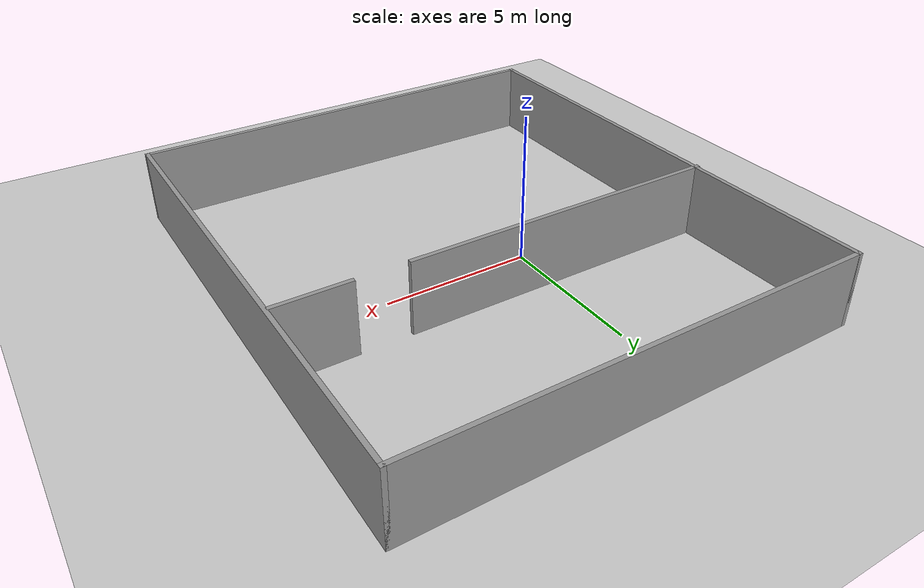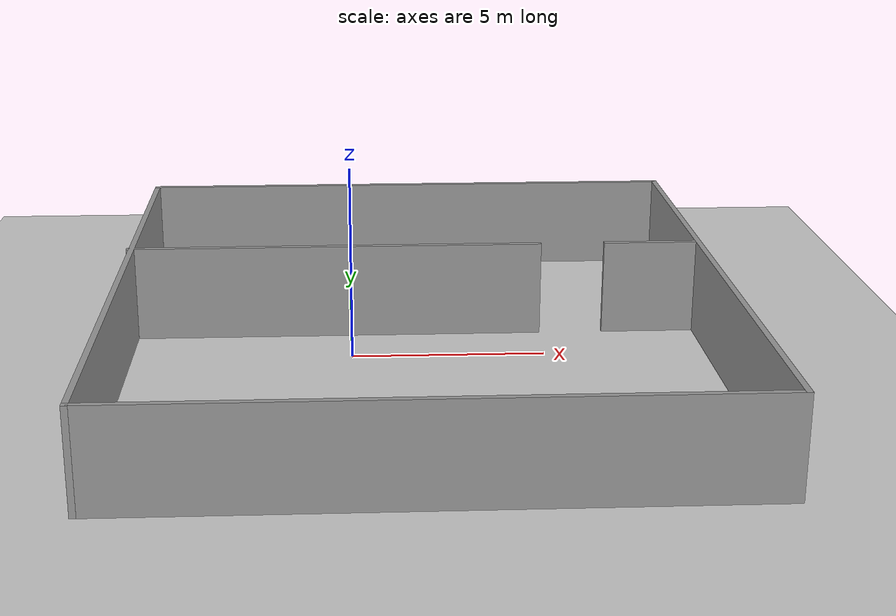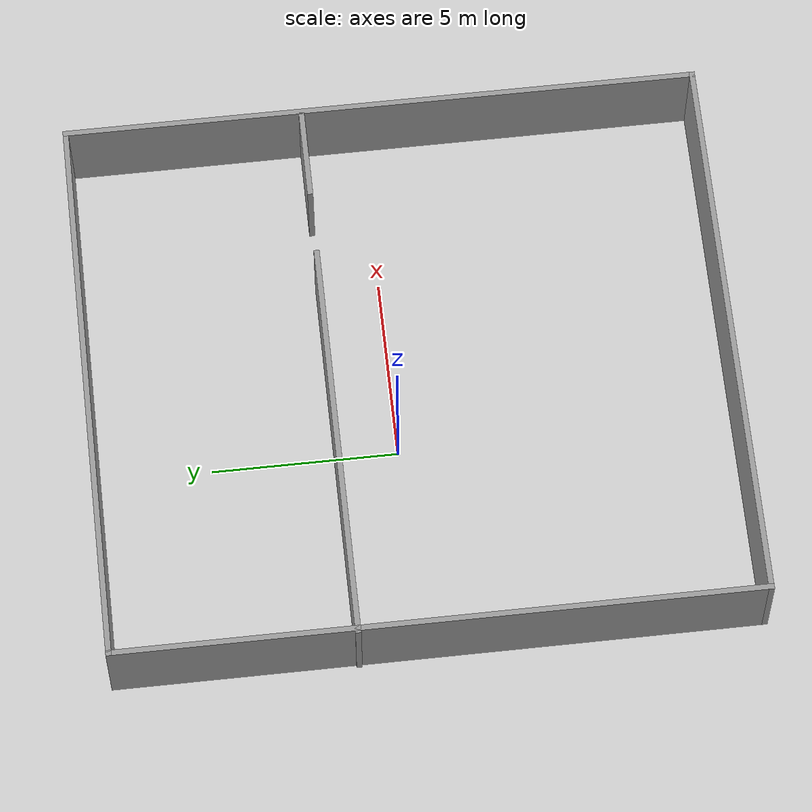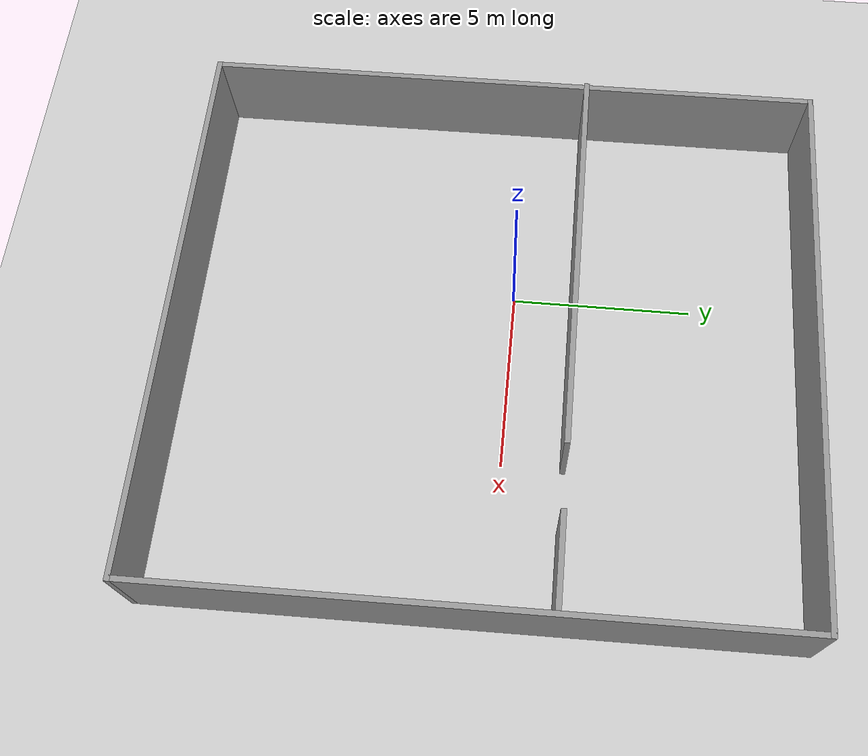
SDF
<?xml version="1.0" ?>
<sdf version="1.4">
  <world name="default">
    <!-- A global light source -->
    <include>
      <uri>model://sun</uri>
    </include>

    <!-- A ground plane -->
    <include>
      <uri>model://ground_plane</uri>
    </include>

    <!-- room map -->
    <include>
        <uri>model://map_2rooms </uri>
    </include>

  </world>
</sdf>

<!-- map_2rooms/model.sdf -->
<sdf version='1.6'>
  <model name='map_2rooms'>
    <pose frame=''>1.72541 -0.485273 0 0 -0 0</pose>
    <link name='Wall_0'>
      <collision name='Wall_0_Collision'>
        <geometry>
          <box>
            <size>15.25 0.15 2.5</size>
          </box>
        </geometry>
        <pose frame=''>0 0 1.25 0 -0 0</pose>
      </collision>
      <visual name='Wall_0_Visual'>
        <pose frame=''>0 0 1.25 0 -0 0</pose>
        <geometry>
          <box>
            <size>15.25 0.15 2.5</size>
          </box>
        </geometry>
        <material>
          <script>
            <uri>file://media/materials/scripts/gazebo.material</uri>
            <name>Gazebo/Grey</name>
          </script>
          <ambient>1 1 1 1</ambient>
        </material>
        <meta>
          <layer>0</layer>
        </meta>
      </visual>
      <pose frame=''>0.030074 8.55 0 0 -0 0</pose>
    </link>
    <link name='Wall_1'>
      <collision name='Wall_1_Collision'>
        <geometry>
          <box>
            <size>17.25 0.15 2.5</size>
          </box>
        </geometry>
        <pose frame=''>0 0 1.25 0 -0 0</pose>
      </collision>
      <visual name='Wall_1_Visual'>
        <pose frame=''>0 0 1.25 0 -0 0</pose>
        <geometry>
          <box>
            <size>17.25 0.15 2.5</size>
          </box>
        </geometry>
        <material>
          <script>
            <uri>file://media/materials/scripts/gazebo.material</uri>
            <name>Gazebo/Grey</name>
          </script>
          <ambient>1 1 1 1</ambient>
        </material>
        <meta>
          <layer>0</layer>
        </meta>
      </visual>
      <pose frame=''>7.58007 0 0 0 -0 -1.5708</pose>
    </link>
    <link name='Wall_2'>
      <collision name='Wall_2_Collision'>
        <geometry>
          <box>
            <size>15.25 0.15 2.5</size>
          </box>
        </geometry>
        <pose frame=''>0 0 1.25 0 -0 0</pose>
      </collision>
      <visual name='Wall_2_Visual'>
        <pose frame=''>0 0 1.25 0 -0 0</pose>
        <geometry>
          <box>
            <size>15.25 0.15 2.5</size>
          </box>
        </geometry>
        <material>
          <script>
            <uri>file://media/materials/scripts/gazebo.material</uri>
            <name>Gazebo/Grey</name>
          </script>
          <ambient>1 1 1 1</ambient>
        </material>
        <meta>
          <layer>0</layer>
        </meta>
      </visual>
      <pose frame=''>0.030074 -8.55 0 0 -0 3.14159</pose>
    </link>
    <link name='Wall_3'>
      <collision name='Wall_3_Collision'>
        <geometry>
          <box>
            <size>17.25 0.15 2.5</size>
          </box>
        </geometry>
        <pose frame=''>0 0 1.25 0 -0 0</pose>
      </collision>
      <visual name='Wall_3_Visual'>
        <pose frame=''>0 0 1.25 0 -0 0</pose>
        <geometry>
          <box>
            <size>17.25 0.15 2.5</size>
          </box>
        </geometry>
        <material>
          <script>
            <uri>file://media/materials/scripts/gazebo.material</uri>
            <name>Gazebo/Grey</name>
          </script>
          <ambient>1 1 1 1</ambient>
        </material>
        <meta>
          <layer>0</layer>
        </meta>
      </visual>
      <pose frame=''>-7.51993 0 0 0 -0 1.5708</pose>
    </link>
    <link name='Wall_5'>
      <collision name='Wall_5_Collision'>
        <geometry>
          <box>
            <size>11 0.15 2.5</size>
          </box>
        </geometry>
        <pose frame=''>0 0 1.25 0 -0 0</pose>
      </collision>
      <visual name='Wall_5_Visual'>
        <pose frame=''>0 0 1.25 0 -0 0</pose>
        <geometry>
          <box>
            <size>11 0.15 2.5</size>
          </box>
        </geometry>
        <material>
          <script>
            <uri>file://media/materials/scripts/gazebo.material</uri>
            <name>Gazebo/Grey</name>
          </script>
          <ambient>1 1 1 1</ambient>
        </material>
        <meta>
          <layer>0</layer>
        </meta>
      </visual>
      <pose frame=''>-2.15508 2.14403 0 0 -0 0</pose>
    </link>
    <link name='Wall_7'>
      <collision name='Wall_7_Collision'>
        <geometry>
          <box>
            <size>2.5 0.15 2.5</size>
          </box>
        </geometry>
        <pose frame=''>0 0 1.25 0 -0 0</pose>
      </collision>
      <visual name='Wall_7_Visual'>
        <pose frame=''>0 0 1.25 0 -0 0</pose>
        <geometry>
          <box>
            <size>2.5 0.15 2.5</size>
          </box>
        </geometry>
        <material>
          <script>
            <uri>file://media/materials/scripts/gazebo.material</uri>
            <name>Gazebo/Grey</name>
          </script>
          <ambient>1 1 1 1</ambient>
        </material>
        <meta>
          <layer>0</layer>
        </meta>
      </visual>
      <pose frame=''>6.28656 2.14403 0 0 -0 0</pose>
    </link>
    <static>1</static>
  </model>
</sdf>
